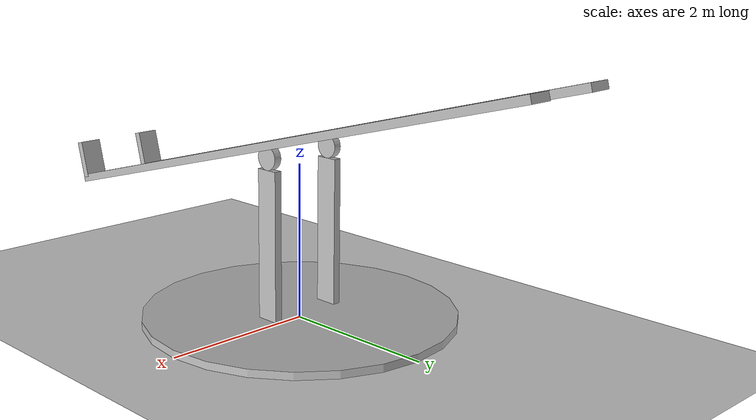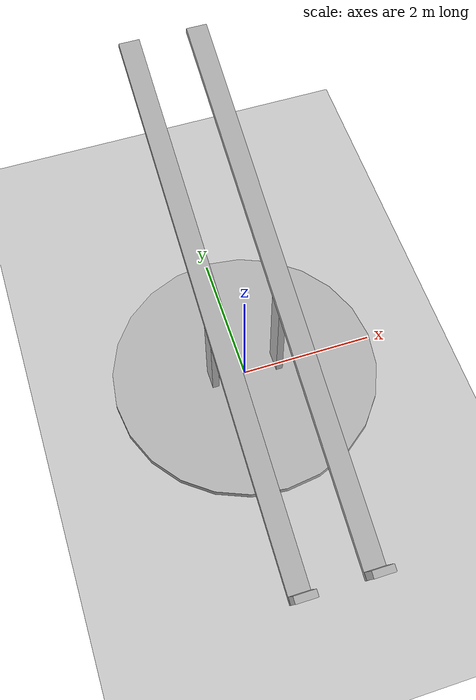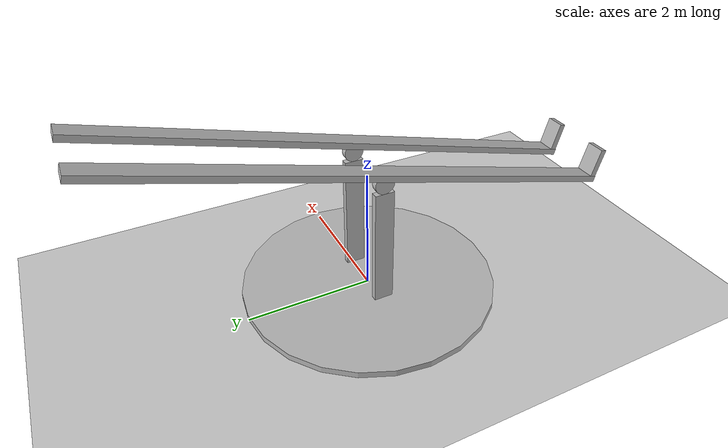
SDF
<sdf version="1.6">
 <world name="launcher">
  <light name="sun" type="directional">
   <pose>0 0 10 0 -0 0</pose>
   <diffuse>0.8 0.8 0.8 1</diffuse>
   <specular>0.2 0.2 0.2 1</specular>
   <attenuation>
    <range>1000</range>
    <constant>0.9</constant>
    <linear>0.01</linear>
    <quadratic>0.001</quadratic>
   </attenuation>
   <direction>-0.5 0.1 -0.9</direction>
  </light>
  <model name="ground_plane">
   <static>1</static>
   <link name="link">
    <collision name="collision">
     <geometry><plane><normal>0 0 1</normal><size>100 100</size></plane></geometry>
     <surface>
      <contact><collide_bitmask>65535</collide_bitmask></contact>
      <friction><ode><mu>100</mu><mu2>50</mu2></ode></friction>
     </surface>
    </collision>
    <visual name="visual">
     <cast_shadows>0</cast_shadows>
     <geometry><plane><normal>0 0 1</normal><size>100 100</size></plane></geometry>
     <material>
      <script><uri>file://media/materials/scripts/gazebo.material</uri><name>Gazebo/Grey</name></script>
     </material>
    </visual>
   </link>
  </model>
  <gravity>0 0 -9.8</gravity>
  <magnetic_field>6e-06 2.3e-05 -4.2e-05</magnetic_field>
  <atmosphere type="adiabatic"/>
  <physics name="default_physics" default="0" type="ode">
   <max_step_size>0.001</max_step_size>
   <real_time_factor>1</real_time_factor>
   <real_time_update_rate>1000</real_time_update_rate>
  </physics>
  <scene><ambient>0.4 0.4 0.4 1</ambient><background>0.7 0.7 0.7 1</background><shadows>1</shadows></scene>
  <spherical_coordinates>
   <surface_model>EARTH_WGS84</surface_model>
   <latitude_deg>0</latitude_deg>
   <longitude_deg>0</longitude_deg>
   <elevation>0</elevation>
   <heading_deg>0</heading_deg>
  </spherical_coordinates>
  <model name="robot">
   <link name="base_link">
    <inertial>
     <mass>18</mass>
     <inertia><ixx>0</ixx><ixy>0</ixy><ixz>0</ixz><iyy>0</iyy><iyz>0</iyz><izz>0</izz></inertia>
    </inertial>
    <collision name="base_link_collision">
     <pose>0 0 0.045 0 -0 0</pose>
     <geometry><cylinder><length>0.1</length><radius>2</radius></cylinder></geometry>
    </collision>
    <collision name="base_link_fixed_joint_lump__pillar1_collision_1">
     <pose>0.5 -0.000398 1 0 -0 1.57</pose>
     <geometry><box><size>0.3 0.1 2</size></box></geometry>
    </collision>
    <collision name="base_link_fixed_joint_lump__pillar2_collision_2">
     <pose>-0.5 0.000398 1 0 -0 1.57</pose>
     <geometry><box><size>0.3 0.1 2</size></box></geometry>
    </collision>
    <collision name="base_link_fixed_joint_lump__slide1_collision_3">
     <pose>0.5 -0.000398 2.3 1.3 0 3.14</pose>
     <geometry><box><size>0.3 0.1 8</size></box></geometry>
    </collision>
    <collision name="base_link_fixed_joint_lump__slide2_collision_4">
     <pose>-0.5 0.000398 2.3 1.3 0 3.14</pose>
     <geometry><box><size>0.3 0.1 8</size></box></geometry>
    </collision>
    <collision name="base_link_fixed_joint_lump__slidesupport1_collision_5">
     <pose>-0.503082 -3.8696 1.5 -0.27 -0 3.14</pose>
     <geometry><box><size>0.3 0.1 0.5</size></box></geometry>
    </collision>
    <collision name="base_link_fixed_joint_lump__slidesupport2_collision_6">
     <pose>0.496918 -3.8704 1.5 -0.27 -0 3.14</pose>
     <geometry><box><size>0.3 0.1 0.5</size></box></geometry>
    </collision>
    <collision name="base_link_fixed_joint_lump__support1_collision_7">
     <pose>0.5 -0.000398 2.15 1.57 -0 1.57</pose>
     <geometry><cylinder><length>0.1</length><radius>0.15</radius></cylinder></geometry>
    </collision>
    <collision name="base_link_fixed_joint_lump__support2_collision_8">
     <pose>-0.5 0.000398 2.15 1.57 -0 1.57</pose>
     <geometry><cylinder><length>0.1</length><radius>0.15</radius></cylinder></geometry>
    </collision>
    <visual name="base_link_visual">
     <pose>0 0 0.045 0 -0 1.57</pose>
     <geometry><cylinder><length>0.1</length><radius>2</radius></cylinder></geometry>
    </visual>
    <visual name="base_link_fixed_joint_lump__pillar1_visual_1">
     <pose>0.5 -0.000398 1 0 -0 1.57</pose>
     <geometry><box><size>0.3 0.1 2</size></box></geometry>
    </visual>
    <visual name="base_link_fixed_joint_lump__pillar2_visual_2">
     <pose>-0.5 0.000398 1 0 -0 1.57</pose>
     <geometry><box><size>0.3 0.1 2</size></box></geometry>
    </visual>
    <visual name="base_link_fixed_joint_lump__slide1_visual_3">
     <pose>0.5 -0.000398 2.3 1.3 0 3.14</pose>
     <geometry><box><size>0.3 0.1 8</size></box></geometry>
    </visual>
    <visual name="base_link_fixed_joint_lump__slide2_visual_4">
     <pose>-0.5 0.000398 2.3 1.3 0 3.14</pose>
     <geometry><box><size>0.3 0.1 8</size></box></geometry>
    </visual>
    <visual name="base_link_fixed_joint_lump__slidesupport1_visual_5">
     <pose>-0.503082 -3.8696 1.5 -0.27 -0 3.14</pose>
     <geometry><box><size>0.3 0.1 0.5</size></box></geometry>
    </visual>
    <visual name="base_link_fixed_joint_lump__slidesupport2_visual_6">
     <pose>0.496918 -3.8704 1.5 -0.27 -0 3.14</pose>
     <geometry><box><size>0.3 0.1 0.5</size></box></geometry>
    </visual>
    <visual name="base_link_fixed_joint_lump__support1_visual_7">
     <pose>0.5 -0.000398 2.15 1.57 -0 1.57</pose>
     <geometry><cylinder><length>0.1</length><radius>0.15</radius></cylinder></geometry>
    </visual>
    <visual name="base_link_fixed_joint_lump__support2_visual_8">
     <pose>-0.5 0.000398 2.15 1.57 -0 1.57</pose>
     <geometry><cylinder><length>0.1</length><radius>0.15</radius></cylinder></geometry>
    </visual>
   </link>
   <static>0</static>
   <plugin name="gazebo_ros_control" filename="libgazebo_ros_control.so">
    <robotNamespace>/ahfaz_sim</robotNamespace>
    <robotSimType>gazebo_ros_control/DefaultRobotHWSim</robotSimType>
   </plugin>
   <pose>-0 0 0.004995 -2e-06 -2e-06 0</pose>
  </model>
 </world>
</sdf>
